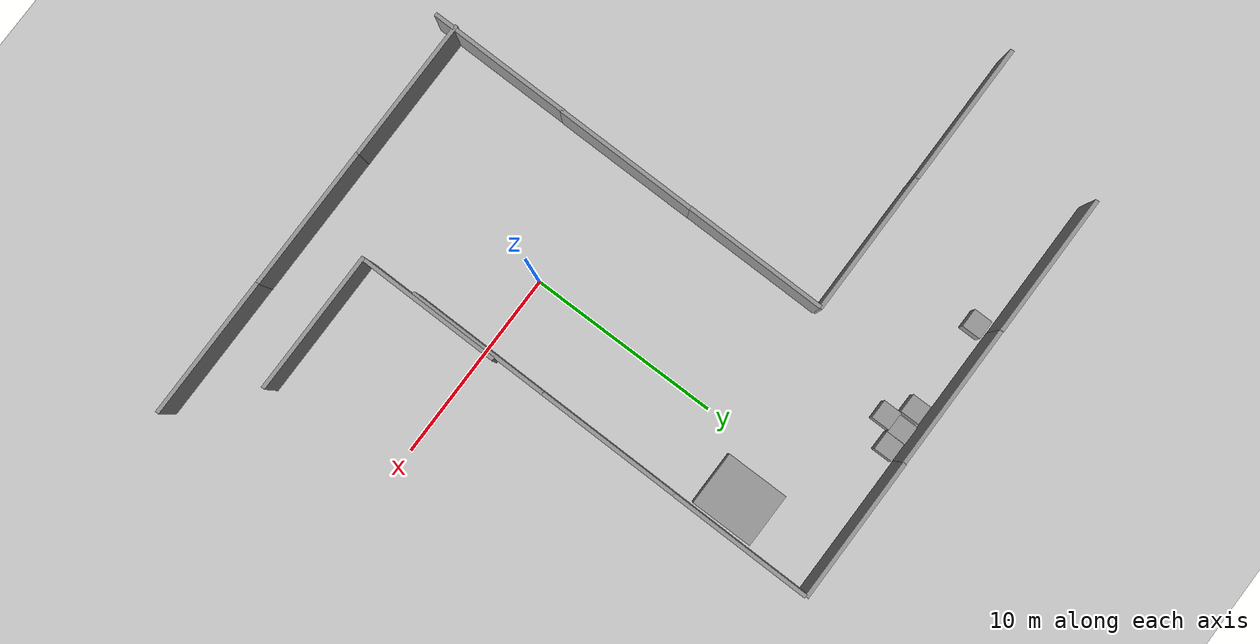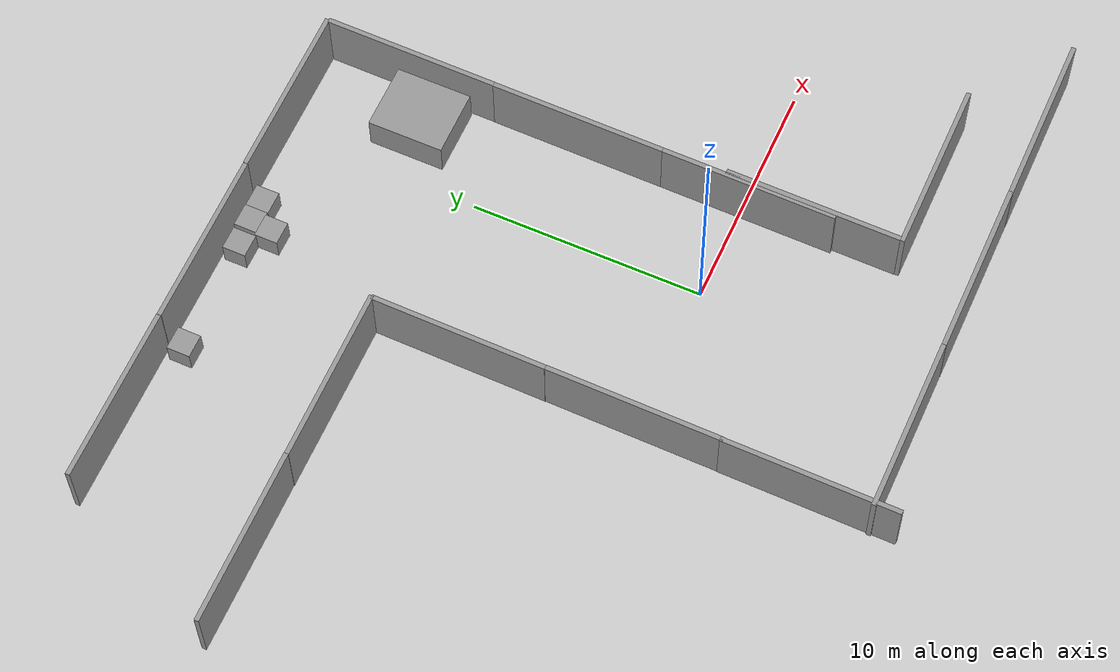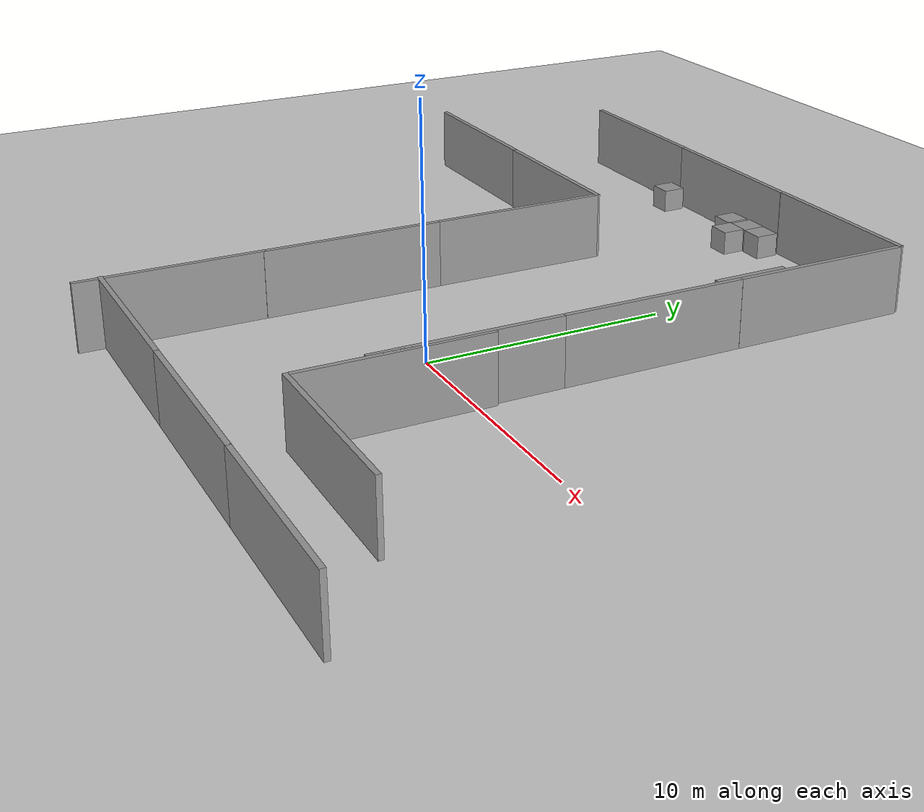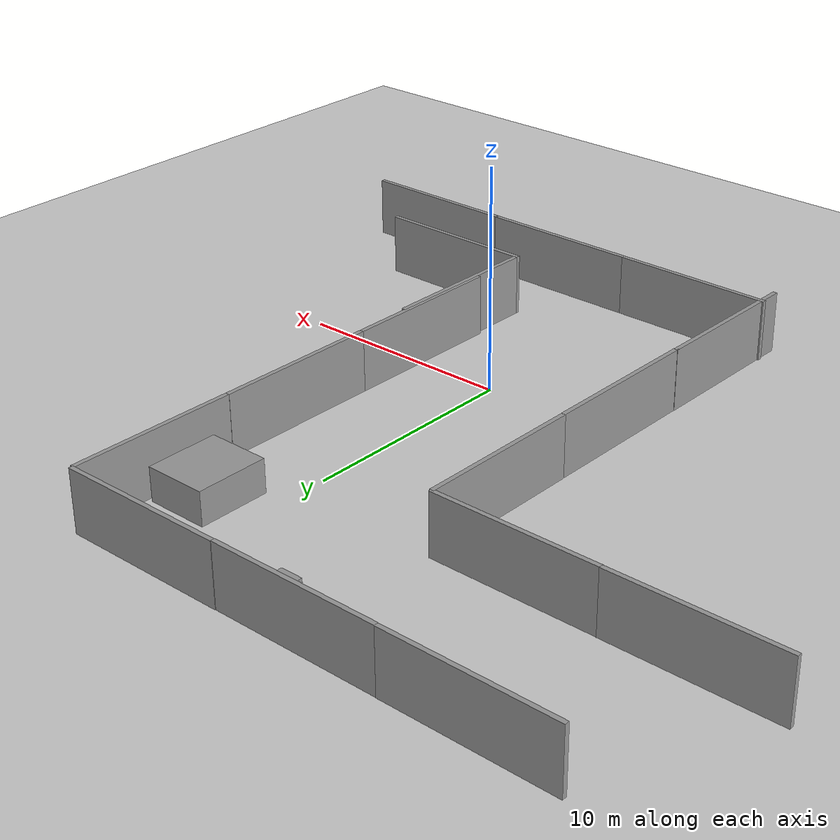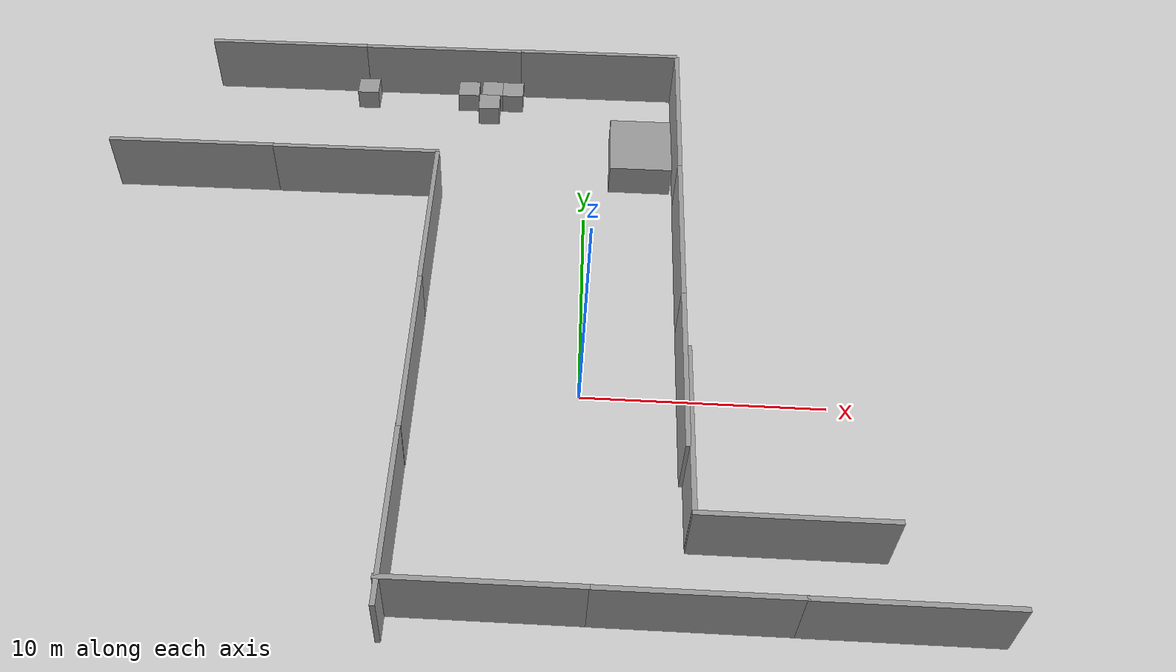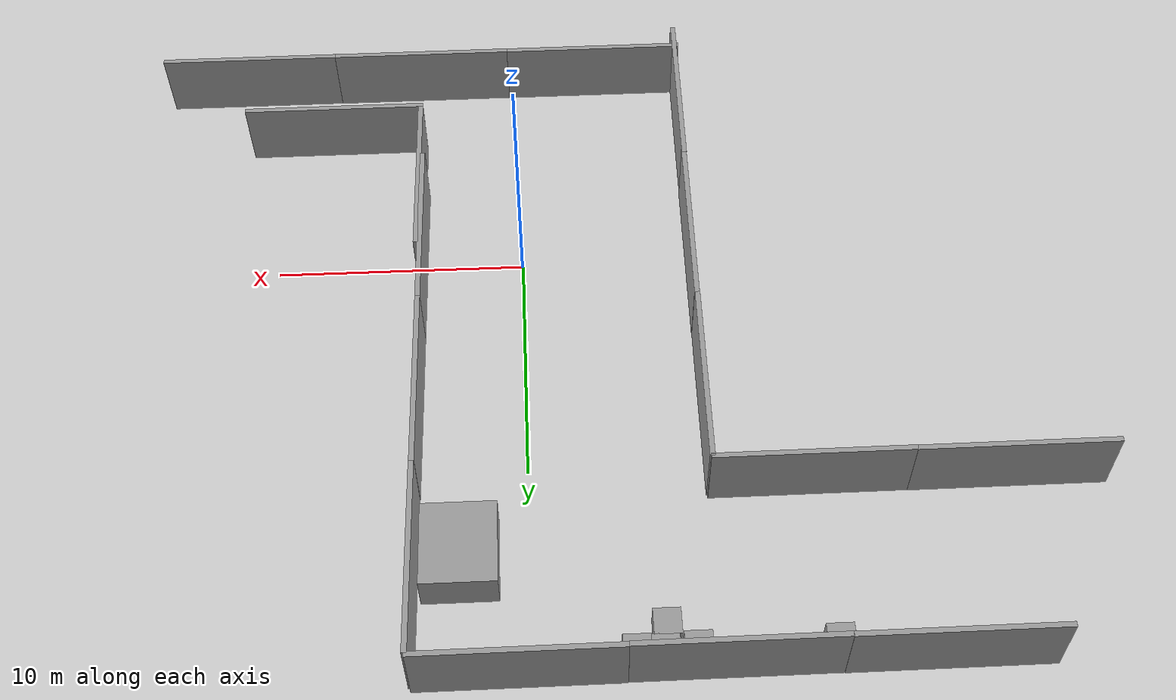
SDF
<sdf version="1.7">
 <world name="default">
  <light name="sun" type="directional">
   <pose>0 0 10 0 -0 0</pose>
   <diffuse>0.8 0.8 0.8 1</diffuse>
   <specular>0.2 0.2 0.2 1</specular>
   <attenuation>
    <range>1000</range>
    <constant>0.9</constant>
    <linear>0.01</linear>
    <quadratic>0.001</quadratic>
   </attenuation>
   <direction>-0.5 0.1 -0.9</direction>
   <spot><inner_angle>0</inner_angle><outer_angle>0</outer_angle><falloff>0</falloff></spot>
  </light>
  <model name="ground_plane">
   <static>1</static>
   <link name="link">
    <collision name="collision">
     <geometry><plane><normal>0 0 1</normal><size>100 100</size></plane></geometry>
     <surface><friction><ode><mu>100</mu><mu2>50</mu2></ode></friction></surface>
    </collision>
    <visual name="visual">
     <cast_shadows>0</cast_shadows>
     <geometry><plane><normal>0 0 1</normal><size>100 100</size></plane></geometry>
     <material>
      <script><uri>file://media/materials/scripts/gazebo.material</uri><name>Gazebo/Grey</name></script>
     </material>
    </visual>
   </link>
  </model>
  <gravity>0 0 -9.8</gravity>
  <magnetic_field>6e-06 2.3e-05 -4.2e-05</magnetic_field>
  <atmosphere type="adiabatic"/>
  <physics type="ode">
   <max_step_size>0.001</max_step_size>
   <real_time_factor>1</real_time_factor>
   <real_time_update_rate>1000</real_time_update_rate>
  </physics>
  <scene><ambient>0.4 0.4 0.4 1</ambient><background>0.7 0.7 0.7 1</background><shadows>1</shadows></scene>
  <audio><device>default</device></audio>
  <spherical_coordinates>
   <surface_model>EARTH_WGS84</surface_model>
   <latitude_deg>0</latitude_deg>
   <longitude_deg>0</longitude_deg>
   <elevation>0</elevation>
   <heading_deg>0</heading_deg>
  </spherical_coordinates>
  <model name="grey_wall">
   <static>1</static>
   <link name="link">
    <pose>0 0 1.4 0 -0 0</pose>
    <collision name="collision"><geometry><box><size>7.5 0.2 2.8</size></box></geometry></collision>
    <visual name="visual">
     <cast_shadows>0</cast_shadows>
     <geometry><box><size>7.5 0.2 2.8</size></box></geometry>
     <material>
      <script>
       <uri>model://grey_wall/materials/scripts</uri>
       <uri>model://grey_wall/materials/textures</uri>
       <name>vrc/grey_wall</name>
      </script>
     </material>
    </visual>
   </link>
   <pose>-6.78669 0.011997 0 0 0 -1.57834</pose>
  </model>
  <model name="grey_wall_clone">
   <static>1</static>
   <link name="link">
    <pose>0 0 1.4 0 -0 0</pose>
    <collision name="collision"><geometry><box><size>7.5 0.2 2.8</size></box></geometry></collision>
    <visual name="visual">
     <cast_shadows>0</cast_shadows>
     <geometry><box><size>7.5 0.2 2.8</size></box></geometry>
     <material>
      <script>
       <uri>model://grey_wall/materials/scripts</uri>
       <uri>model://grey_wall/materials/textures</uri>
       <name>vrc/grey_wall</name>
      </script>
     </material>
    </visual>
   </link>
   <pose>4.03876 -0.275369 0 0 0 -1.57834</pose>
  </model>
  <model name="grey_wall_clone_0">
   <static>1</static>
   <link name="link">
    <pose>0 0 1.4 0 -0 0</pose>
    <collision name="collision"><geometry><box><size>7.5 0.2 2.8</size></box></geometry></collision>
    <visual name="visual">
     <cast_shadows>0</cast_shadows>
     <geometry><box><size>7.5 0.2 2.8</size></box></geometry>
     <material>
      <script>
       <uri>model://grey_wall/materials/scripts</uri>
       <uri>model://grey_wall/materials/textures</uri>
       <name>vrc/grey_wall</name>
      </script>
     </material>
    </visual>
   </link>
   <pose>-6.74097 7.49673 0 0 0 -1.57834</pose>
  </model>
  <model name="grey_wall_clone_1">
   <static>1</static>
   <link name="link">
    <pose>0 0 1.4 0 -0 0</pose>
    <collision name="collision"><geometry><box><size>7.5 0.2 2.8</size></box></geometry></collision>
    <visual name="visual">
     <cast_shadows>0</cast_shadows>
     <geometry><box><size>7.5 0.2 2.8</size></box></geometry>
     <material>
      <script>
       <uri>model://grey_wall/materials/scripts</uri>
       <uri>model://grey_wall/materials/textures</uri>
       <name>vrc/grey_wall</name>
      </script>
     </material>
    </visual>
   </link>
   <pose>4.09471 7.22499 0 0 0 -1.57834</pose>
  </model>
  <model name="grey_wall_clone_2">
   <static>1</static>
   <link name="link">
    <pose>0 0 1.4 0 -0 0</pose>
    <collision name="collision"><geometry><box><size>7.5 0.2 2.8</size></box></geometry></collision>
    <visual name="visual">
     <cast_shadows>0</cast_shadows>
     <geometry><box><size>7.5 0.2 2.8</size></box></geometry>
     <material>
      <script>
       <uri>model://grey_wall/materials/scripts</uri>
       <uri>model://grey_wall/materials/textures</uri>
       <name>vrc/grey_wall</name>
      </script>
     </material>
    </visual>
   </link>
   <pose>4.15738 14.7199 0 0 0 -1.57834</pose>
  </model>
  <model name="grey_wall_clone_3">
   <static>1</static>
   <link name="link">
    <pose>0 0 1.4 0 -0 0</pose>
    <collision name="collision"><geometry><box><size>7.5 0.2 2.8</size></box></geometry></collision>
    <visual name="visual">
     <cast_shadows>0</cast_shadows>
     <geometry><box><size>7.5 0.2 2.8</size></box></geometry>
     <material>
      <script>
       <uri>model://grey_wall/materials/scripts</uri>
       <uri>model://grey_wall/materials/textures</uri>
       <name>vrc/grey_wall</name>
      </script>
     </material>
    </visual>
   </link>
   <pose>-10.4124 11.2518 0 0 -0 0.002725</pose>
  </model>
  <model name="grey_wall_clone_3_clone">
   <static>1</static>
   <link name="link">
    <pose>0 0 1.4 0 -0 0</pose>
    <collision name="collision"><geometry><box><size>7.5 0.2 2.8</size></box></geometry></collision>
    <visual name="visual">
     <cast_shadows>0</cast_shadows>
     <geometry><box><size>7.5 0.2 2.8</size></box></geometry>
     <material>
      <script>
       <uri>model://grey_wall/materials/scripts</uri>
       <uri>model://grey_wall/materials/textures</uri>
       <name>vrc/grey_wall</name>
      </script>
     </material>
    </visual>
   </link>
   <pose>0.448601 18.5165 0 0 -0 0.002725</pose>
  </model>
  <model name="grey_wall_clone_3_clone_0">
   <static>1</static>
   <link name="link">
    <pose>0 0 1.4 0 -0 0</pose>
    <collision name="collision"><geometry><box><size>7.5 0.2 2.8</size></box></geometry></collision>
    <visual name="visual">
     <cast_shadows>0</cast_shadows>
     <geometry><box><size>7.5 0.2 2.8</size></box></geometry>
     <material>
      <script>
       <uri>model://grey_wall/materials/scripts</uri>
       <uri>model://grey_wall/materials/textures</uri>
       <name>vrc/grey_wall</name>
      </script>
     </material>
    </visual>
   </link>
   <pose>-7.05584 18.4768 0 0 -0 0.002725</pose>
  </model>
  <model name="grey_wall_clone_3_clone_1">
   <static>1</static>
   <link name="link">
    <pose>0 0 1.4 0 -0 0</pose>
    <collision name="collision"><geometry><box><size>7.5 0.2 2.8</size></box></geometry></collision>
    <visual name="visual">
     <cast_shadows>0</cast_shadows>
     <geometry><box><size>7.5 0.2 2.8</size></box></geometry>
     <material>
      <script>
       <uri>model://grey_wall/materials/scripts</uri>
       <uri>model://grey_wall/materials/textures</uri>
       <name>vrc/grey_wall</name>
      </script>
     </material>
    </visual>
   </link>
   <pose>-14.5607 18.4686 0 0 -0 0.002725</pose>
  </model>
  <model name="grey_wall_clone_3_clone_2">
   <static>1</static>
   <link name="link">
    <pose>0 0 1.4 0 -0 0</pose>
    <collision name="collision"><geometry><box><size>7.5 0.2 2.8</size></box></geometry></collision>
    <visual name="visual">
     <cast_shadows>0</cast_shadows>
     <geometry><box><size>7.5 0.2 2.8</size></box></geometry>
     <material>
      <script>
       <uri>model://grey_wall/materials/scripts</uri>
       <uri>model://grey_wall/materials/textures</uri>
       <name>vrc/grey_wall</name>
      </script>
     </material>
    </visual>
   </link>
   <pose>-17.8841 11.2437 0 0 -0 0.002725</pose>
  </model>
  <model name="unit_box">
   <pose>2.513 13.6163 0.5 0 -0 0</pose>
   <link name="link">
    <inertial>
     <mass>1</mass>
     <inertia>
      <ixx>0.166667</ixx>
      <ixy>0</ixy>
      <ixz>0</ixz>
      <iyy>0.166667</iyy>
      <iyz>0</iyz>
      <izz>0.166667</izz>
     </inertia>
    </inertial>
    <collision name="collision"><geometry><box><size>2.81702 3.26007 1.96146</size></box></geometry></collision>
    <visual name="visual">
     <geometry><box><size>2.81702 3.26007 1.96146</size></box></geometry>
     <material>
      <script><name>Gazebo/Grey</name><uri>file://media/materials/scripts/gazebo.material</uri></script>
     </material>
    </visual>
   </link>
  </model>
  <model name="grey_wall_clone_3_clone_3">
   <static>1</static>
   <link name="link">
    <pose>0 0 1.4 0 -0 0</pose>
    <collision name="collision"><geometry><box><size>7.5 0.2 2.8</size></box></geometry></collision>
    <visual name="visual">
     <cast_shadows>0</cast_shadows>
     <geometry><box><size>7.5 0.2 2.8</size></box></geometry>
     <material>
      <script>
       <uri>model://grey_wall/materials/scripts</uri>
       <uri>model://grey_wall/materials/textures</uri>
       <name>vrc/grey_wall</name>
      </script>
     </material>
    </visual>
   </link>
   <pose>-3.29289 -9.9996 0 0 -0 0.002725</pose>
  </model>
  <model name="grey_wall_clone_3_clone_4">
   <static>1</static>
   <link name="link">
    <pose>0 0 1.4 0 -0 0</pose>
    <collision name="collision"><geometry><box><size>7.5 0.2 2.8</size></box></geometry></collision>
    <visual name="visual">
     <cast_shadows>0</cast_shadows>
     <geometry><box><size>7.5 0.2 2.8</size></box></geometry>
     <material>
      <script>
       <uri>model://grey_wall/materials/scripts</uri>
       <uri>model://grey_wall/materials/textures</uri>
       <name>vrc/grey_wall</name>
      </script>
     </material>
    </visual>
   </link>
   <pose>4.18093 -9.98458 0 0 -0 0.002725</pose>
  </model>
  <model name="grey_wall_clone_3_clone_5">
   <static>1</static>
   <link name="link">
    <pose>0 0 1.4 0 -0 0</pose>
    <collision name="collision"><geometry><box><size>7.5 0.2 2.8</size></box></geometry></collision>
    <visual name="visual">
     <cast_shadows>0</cast_shadows>
     <geometry><box><size>7.5 0.2 2.8</size></box></geometry>
     <material>
      <script>
       <uri>model://grey_wall/materials/scripts</uri>
       <uri>model://grey_wall/materials/textures</uri>
       <name>vrc/grey_wall</name>
      </script>
     </material>
    </visual>
   </link>
   <pose>7.80817 -6.82182 0 0 -0 0.002725</pose>
  </model>
  <model name="grey_wall_clone_3_clone_6">
   <static>1</static>
   <link name="link">
    <pose>0 0 1.4 0 -0 0</pose>
    <collision name="collision"><geometry><box><size>7.5 0.2 2.8</size></box></geometry></collision>
    <visual name="visual">
     <cast_shadows>0</cast_shadows>
     <geometry><box><size>7.5 0.2 2.8</size></box></geometry>
     <material>
      <script>
       <uri>model://grey_wall/materials/scripts</uri>
       <uri>model://grey_wall/materials/textures</uri>
       <name>vrc/grey_wall</name>
      </script>
     </material>
    </visual>
   </link>
   <pose>11.5884 -9.97036 0 0 -0 0.002725</pose>
  </model>
  <model name="grey_wall_clone_clone">
   <static>1</static>
   <link name="link">
    <pose>0 0 1.4 0 -0 0</pose>
    <collision name="collision"><geometry><box><size>7.5 0.2 2.8</size></box></geometry></collision>
    <visual name="visual">
     <cast_shadows>0</cast_shadows>
     <geometry><box><size>7.5 0.2 2.8</size></box></geometry>
     <material>
      <script>
       <uri>model://grey_wall/materials/scripts</uri>
       <uri>model://grey_wall/materials/textures</uri>
       <name>vrc/grey_wall</name>
      </script>
     </material>
    </visual>
   </link>
   <pose>4.16941 -2.99665 0 0 0 -1.57834</pose>
  </model>
  <model name="grey_wall_clone_clone_0">
   <static>1</static>
   <link name="link">
    <pose>0 0 1.4 0 -0 0</pose>
    <collision name="collision"><geometry><box><size>7.5 0.2 2.8</size></box></geometry></collision>
    <visual name="visual">
     <cast_shadows>0</cast_shadows>
     <geometry><box><size>7.5 0.2 2.8</size></box></geometry>
     <material>
      <script>
       <uri>model://grey_wall/materials/scripts</uri>
       <uri>model://grey_wall/materials/textures</uri>
       <name>vrc/grey_wall</name>
      </script>
     </material>
    </visual>
   </link>
   <pose>-6.85771 -7.37169 0 0 0 -1.57834</pose>
  </model>
  <model name="unit_box_0">
   <pose>-4.64874 17.7703 0.5 0 -0 0</pose>
   <link name="link">
    <inertial>
     <mass>1</mass>
     <inertia>
      <ixx>0.166667</ixx>
      <ixy>0</ixy>
      <ixz>0</ixz>
      <iyy>0.166667</iyy>
      <iyz>0</iyz>
      <izz>0.166667</izz>
     </inertia>
    </inertial>
    <collision name="collision"><geometry><box><size>1 1 1</size></box></geometry></collision>
    <visual name="visual">
     <geometry><box><size>1 1 1</size></box></geometry>
     <material>
      <script><name>Gazebo/Grey</name><uri>file://media/materials/scripts/gazebo.material</uri></script>
     </material>
    </visual>
   </link>
  </model>
  <model name="unit_box_0_clone">
   <pose>-3.64822 17.7466 0.5 0 -0 0</pose>
   <link name="link">
    <inertial>
     <mass>1</mass>
     <inertia>
      <ixx>0.166667</ixx>
      <ixy>0</ixy>
      <ixz>0</ixz>
      <iyy>0.166667</iyy>
      <iyz>0</iyz>
      <izz>0.166667</izz>
     </inertia>
    </inertial>
    <collision name="collision"><geometry><box><size>1 1 1</size></box></geometry></collision>
    <visual name="visual">
     <geometry><box><size>1 1 1</size></box></geometry>
     <material>
      <script><name>Gazebo/Grey</name><uri>file://media/materials/scripts/gazebo.material</uri></script>
     </material>
    </visual>
   </link>
  </model>
  <model name="unit_box_0_clone_0">
   <pose>-4.74956 16.7988 0.5 0 -0 0</pose>
   <link name="link">
    <inertial>
     <mass>1</mass>
     <inertia>
      <ixx>0.166667</ixx>
      <ixy>0</ixy>
      <ixz>0</ixz>
      <iyy>0.166667</iyy>
      <iyz>0</iyz>
      <izz>0.166667</izz>
     </inertia>
    </inertial>
    <collision name="collision"><geometry><box><size>1 1 1</size></box></geometry></collision>
    <visual name="visual">
     <geometry><box><size>1 1 1</size></box></geometry>
     <material>
      <script><name>Gazebo/Grey</name><uri>file://media/materials/scripts/gazebo.material</uri></script>
     </material>
    </visual>
   </link>
  </model>
  <model name="unit_box_0_clone_1">
   <pose>-5.78902 17.7108 0.5 0 -0 0</pose>
   <link name="link">
    <inertial>
     <mass>1</mass>
     <inertia>
      <ixx>0.166667</ixx>
      <ixy>0</ixy>
      <ixz>0</ixz>
      <iyy>0.166667</iyy>
      <iyz>0</iyz>
      <izz>0.166667</izz>
     </inertia>
    </inertial>
    <collision name="collision"><geometry><box><size>1 1 1</size></box></geometry></collision>
    <visual name="visual">
     <geometry><box><size>1 1 1</size></box></geometry>
     <material>
      <script><name>Gazebo/Grey</name><uri>file://media/materials/scripts/gazebo.material</uri></script>
     </material>
    </visual>
   </link>
  </model>
  <model name="unit_box_0_clone_2">
   <pose>-10.7277 17.6537 0.5 0 -0 0</pose>
   <link name="link">
    <inertial>
     <mass>1</mass>
     <inertia>
      <ixx>0.166667</ixx>
      <ixy>0</ixy>
      <ixz>0</ixz>
      <iyy>0.166667</iyy>
      <iyz>0</iyz>
      <izz>0.166667</izz>
     </inertia>
    </inertial>
    <collision name="collision"><geometry><box><size>1 1 1</size></box></geometry></collision>
    <visual name="visual">
     <geometry><box><size>1 1 1</size></box></geometry>
     <material>
      <script><name>Gazebo/Grey</name><uri>file://media/materials/scripts/gazebo.material</uri></script>
     </material>
    </visual>
   </link>
  </model>
 </world>
</sdf>
